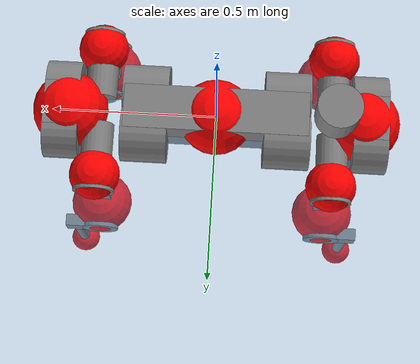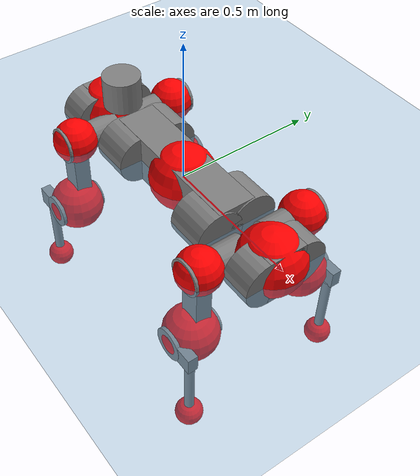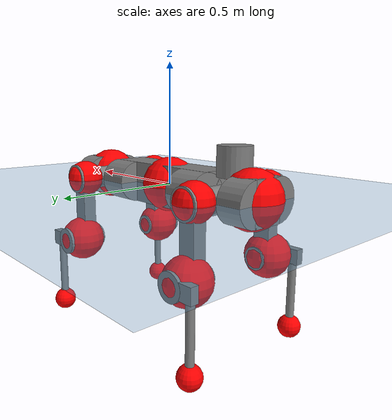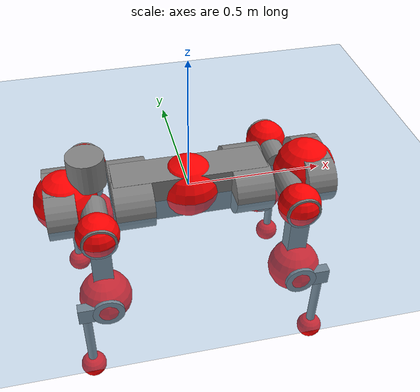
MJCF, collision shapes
<mujoco model="anymal_c">
  <compiler angle="radian" assetdir="assets" balanceinertia="true" inertiafromgeom="false"/>

  <option timestep="0.005" density="1.2" viscosity="2e-05"/>

  <size nkey="1"/>

  <visual>
    <quality shadowsize="8192"/>
    <map shadowclip="0.5"/>
  </visual>

  <default>
    <default class="/">
      <material specular="0" shininess="0.25"/>
      <geom contype="0" conaffinity="0" group="1" solref="-1000 -80"/>
      <site size="0.01 0.005 0.005" group="5"/>
      <general forcelimited="true" forcerange="-80 80" biastype="affine" gainprm="80" biasprm="0 -80 -2"/>
      <default class="anymal_c">
        <joint armature="0.01" damping="0.01" frictionloss="0.1"/>
        <default class="visual">
          <geom type="mesh" group="2"/>
          <default class="visual_zflip"/>
        </default>
        <default class="collision">
          <geom type="cylinder" group="3"/>
          <default class="foot">
            <geom size="0.03 0 0" type="sphere" condim="6" priority="1" friction="0.8 0.02 0.01" solimp="0.015 1 0.03"/>
          </default>
        </default>
      </default>
      <default class="reward_collision_sphere">
        <geom group="5" rgba="1 0 0 1"/>
      </default>
    </default>
  </default>

  <asset>
    <texture type="skybox" colorspace="auto" name="//unnamed_texture_0" builtin="gradient" rgb1="0.95 0.95 0.95" rgb2="0.95 0.95 0.95" width="100" height="600"/>
    <texture type="2d" colorspace="auto" name="texplane" builtin="checker" rgb1="0.345 0.575 0.748" rgb2="0.345 0.575 0.748" markrgb="1 1 1" width="512" height="512"/>
    <texture type="2d" colorspace="linear" name="base" file="base.png"/>
    <texture type="2d" colorspace="linear" name="top_shell" file="top_shell.png"/>
    <texture type="2d" colorspace="linear" name="bottom_shell" file="bottom_shell.png"/>
    <texture type="2d" colorspace="linear" name="remote" file="remote.png"/>
    <texture type="2d" colorspace="linear" name="hatch" file="hatch.png"/>
    <texture type="2d" colorspace="linear" name="handle" file="handle.png"/>
    <texture type="2d" colorspace="linear" name="face" file="face.png"/>
    <texture type="2d" colorspace="linear" name="battery" file="battery.png"/>
    <texture type="2d" colorspace="linear" name="lidar_cage" file="lidar_cage.png"/>
    <texture type="2d" colorspace="linear" name="depth_camera" file="depth_camera.png"/>
    <texture type="2d" colorspace="linear" name="wide_angle_camera" file="wide_angle_camera.png"/>
    <texture type="2d" colorspace="linear" name="lidar" file="lidar.png"/>
    <texture type="2d" colorspace="linear" name="drive" file="drive.png"/>
    <texture type="2d" colorspace="linear" name="hip_l" file="hip_l.png"/>
    <texture type="2d" colorspace="linear" name="shank_l" file="shank_l.png"/>
    <texture type="2d" colorspace="linear" name="foot" file="foot.png"/>
    <texture type="2d" colorspace="linear" name="thigh" file="thigh.png"/>
    <texture type="2d" colorspace="linear" name="shank_r" file="shank_r.png"/>
    <texture type="2d" colorspace="linear" name="hip_r" file="hip_r.png"/>
    <material name="MatPlane" class="/" texture="texplane" texuniform="true" texrepeat="2 2" specular="0.9" shininess="0.5"/>
    <material name="black_plastic" class="/" rgba="0.007 0.007 0.007 1"/>
    <material name="green" class="/" rgba="0.052 0.178 0.033 1"/>
    <material name="red" class="/" rgba="0.178 0.006 0.005 1"/>
    <material name="yellow" class="/" rgba="0.178 0.119 0.006 1"/>
    <material name="lwl" class="/" rgba="0.8 0.8 0.8 1"/>
    <material name="base" class="/" texture="base"/>
    <material name="top_shell" class="/" texture="top_shell"/>
    <material name="bottom_shell" class="/" texture="bottom_shell"/>
    <material name="hip_l" class="/" texture="hip_l"/>
    <material name="thigh" class="/" texture="thigh"/>
    <material name="shank_l" class="/" texture="shank_l"/>
    <material name="foot" class="/" texture="foot"/>
    <material name="hip_r" class="/" texture="hip_r"/>
    <material name="shank" class="/" texture="shank_r"/>
    <material name="hatch" class="/" texture="hatch"/>
    <material name="remote" class="/" texture="remote"/>
    <material name="handle" class="/" texture="handle"/>
    <material name="face" class="/" texture="face"/>
    <material name="depth_camera" class="/" texture="depth_camera"/>
    <material name="wide_angle_camera" class="/" texture="wide_angle_camera"/>
    <material name="battery" class="/" texture="battery"/>
    <material name="lidar_cage" class="/" texture="lidar_cage"/>
    <material name="lidar" class="/" texture="lidar"/>
    <material name="drive" class="/" texture="drive"/>
    <mesh name="base_0" class="/" file="base_0.obj"/>
    <mesh name="base_1" class="/" file="base_1.obj"/>
    <mesh name="base_2" class="/" file="base_2.obj"/>
    <mesh name="base_3" class="/" file="base_3.obj"/>
    <mesh name="base_4" class="/" file="base_4.obj"/>
    <mesh name="base_5" class="/" file="base_5.obj"/>
    <mesh name="top_shell" class="/" file="top_shell.obj"/>
    <mesh name="bottom_shell" class="/" file="bottom_shell.obj"/>
    <mesh name="remote" class="/" file="remote.obj"/>
    <mesh name="handle" class="/" file="handle.obj"/>
    <mesh name="face" class="/" file="face.obj"/>
    <mesh name="wide_angle_camera" class="/" file="wide_angle_camera.obj"/>
    <mesh name="depth_camera" class="/" file="depth_camera.obj"/>
    <mesh name="battery" class="/" file="battery.obj"/>
    <mesh name="lidar_cage" class="/" file="lidar_cage.obj"/>
    <mesh name="lidar" class="/" file="lidar.obj"/>
    <mesh name="drive" class="/" file="drive.obj"/>
    <mesh name="hip_l" class="/" file="hip_l.obj"/>
    <mesh name="thigh" class="/" file="thigh.obj"/>
    <mesh name="shank_l" class="/" file="shank_l.obj"/>
    <mesh name="foot" class="/" file="foot.obj"/>
    <mesh name="hip_r" class="/" file="hip_r.obj"/>
    <mesh name="hatch" class="/" file="hatch.obj"/>
    <mesh name="shank_r" class="/" file="shank_r.obj"/>
  </asset>

  <worldbody>
    <geom name="floor" class="/" size="100 100 0.125" type="plane" group="0" material="MatPlane"/>
    <light name="toplight_shadow" class="/" pos="0 0 5" dir="0.0990148 0.0990148 -0.990148" type="directional" ambient="0.04 0.04 0.04" diffuse="0.55 0.55 0.55" specular="0.12 0.12 0.12"/>
    <light name="toplight_fill" class="/" pos="0 0 5" dir="0.0990148 0.0990148 -0.990148" type="directional" castshadow="false" ambient="0.04 0.04 0.04" diffuse="0.3 0.3 0.3" specular="0.08 0.08 0.08"/>
    <body name="trunk" childclass="anymal_c" pos="-4.15325e-05 3.50039e-05 3.27736e-05" quat="1 -9.68064e-05 -2.11236e-05 0.000108998">
      <inertial pos="0.00236716 0.00147994 0.0478037" quat="0.499978 0.500264 0.499836 0.499922" mass="17.2574" diaginertia="0.619642 0.413016 0.194549"/>
      <joint name="//unnamed_joint_0" type="free" armature="0" damping="0" frictionloss="0"/>
      <geom name="//unnamed_geom_1" class="visual" material="green" mesh="base_0"/>
      <geom name="//unnamed_geom_2" class="visual" material="yellow" mesh="base_1"/>
      <geom name="//unnamed_geom_3" class="visual" material="red" mesh="base_2"/>
      <geom name="//unnamed_geom_4" class="visual" material="black_plastic" mesh="base_3"/>
      <geom name="//unnamed_geom_5" class="visual" material="lwl" mesh="base_4"/>
      <geom name="//unnamed_geom_6" class="visual" material="base" mesh="base_5"/>
      <geom name="trunk_1" class="collision" size="0.27883 0.0673037 0.0865334" type="box"/>
      <geom name="trunk_2" class="collision" size="0.0865334 0.0697074" pos="0.215233 0.0643064 0" quat="0.707107 0 0.707107 0"/>
      <geom name="trunk_3" class="collision" size="0.0865334 0.0697074" pos="-0.215233 0.0643064 0" quat="0.707107 0 0.707107 0"/>
      <geom name="trunk_4" class="collision" size="0.0865334 0.0697074" pos="0.215233 -0.0643064 0" quat="0.707107 0 0.707107 0"/>
      <geom name="trunk_5" class="collision" size="0.0865334 0.0697074" pos="-0.215233 -0.0643064 0" quat="0.707107 0 0.707107 0"/>
      <geom name="//unnamed_geom_12" class="visual" material="top_shell" mesh="top_shell"/>
      <geom name="//unnamed_geom_13" class="visual" material="bottom_shell" mesh="bottom_shell"/>
      <geom name="//unnamed_geom_14" class="visual" material="remote" mesh="remote"/>
      <geom name="//unnamed_geom_15" class="visual" material="handle" mesh="handle"/>
      <geom name="//unnamed_geom_16" class="visual" pos="0.410179 0 0" quat="1 0 0 0" material="face" mesh="face"/>
      <geom name="trunk_6" class="collision" size="0.0528815 0.0673037 0.0865334" pos="0.464606 0 0" type="box"/>
      <geom name="//unnamed_geom_18" class="collision" size="0.0865334 0.0528815" pos="0.464606 0.0643064 0" quat="0.707107 0 0.707107 0"/>
      <geom name="//unnamed_geom_19" class="collision" size="0.0865334 0.0528815" pos="0.464606 -0.0643064 0" quat="0.707107 0 0.707107 0"/>
      <geom name="//unnamed_geom_20" class="visual" pos="0.456837 0 -0.0284036" quat="0.965926 0 0.258819 0" material="depth_camera" mesh="depth_camera"/>
      <geom name="//unnamed_geom_21" class="visual" pos="0.507652 0 0.0146138" material="wide_angle_camera" mesh="wide_angle_camera"/>
      <geom name="//unnamed_geom_22" class="visual_zflip" pos="-0.410179 0 0" quat="0 0 0 1" material="face" mesh="face"/>
      <geom name="trunk_7" class="collision" size="0.0528815 0.0673037 0.0865334" pos="-0.464606 0 0" quat="0 0 0 1" type="box"/>
      <geom name="//unnamed_geom_24" class="collision" size="0.0865334 0.0528815" pos="-0.464606 -0.0643064 0" quat="0 -0.707107 0 0.707107"/>
      <geom name="//unnamed_geom_25" class="collision" size="0.0865334 0.0528815" pos="-0.464606 0.0643064 0" quat="0 -0.707107 0 0.707107"/>
      <geom name="//unnamed_geom_26" class="visual" pos="-0.456837 0 -0.0284036" quat="0 -0.258819 0 0.965926" material="depth_camera" mesh="depth_camera"/>
      <geom name="//unnamed_geom_27" class="visual_zflip" pos="-0.507652 0 0.0146138" quat="0 0 0 1" material="wide_angle_camera" mesh="wide_angle_camera"/>
      <geom name="//unnamed_geom_28" class="visual" material="battery" mesh="battery"/>
      <geom name="//unnamed_geom_29" class="visual" pos="0 0.0693099 0.0284604" quat="0.683013 -0.183013 0.183013 0.683013" material="depth_camera" mesh="depth_camera"/>
      <geom name="//unnamed_geom_30" class="visual" pos="0 -0.0693099 0.0284604" quat="0.683013 0.183013 0.183013 -0.683013" material="depth_camera" mesh="depth_camera"/>
      <geom name="//unnamed_geom_31" class="visual" pos="-0.360206 0 0.0717512" quat="1 0 0 0" material="lidar_cage" mesh="lidar_cage"/>
      <geom name="trunk_8" class="collision" size="0.0673037 0.0576889" pos="-0.360206 0 0.130324"/>
      <geom name="//unnamed_geom_33" class="visual" pos="-0.360206 -2.78598e-05 0.138817" quat="0.707107 0 0 -0.707107" material="lidar" mesh="lidar"/>
      <geom name="//unnamed_geom_34" class="visual" pos="0.296774 0.0955614 -9.92634e-10" quat="0.258819 0.965926 0 0" material="drive" mesh="drive"/>
      <geom name="//unnamed_geom_35" class="visual" pos="0.296774 -0.0955614 9.92634e-10" quat="0.258819 -0.965926 0 0" material="drive" mesh="drive"/>
      <geom name="//unnamed_geom_36" class="visual" pos="-0.296774 0.0955614 9.92634e-10" quat="0 0 0.965926 -0.258819" material="drive" mesh="drive"/>
      <geom name="//unnamed_geom_37" class="visual" pos="-0.296774 -0.0955614 -9.92634e-10" quat="0 0 -0.965926 -0.258819" material="drive" mesh="drive"/>
      <geom name="//unnamed_geom_38" class="visual" pos="0.114791 0 0.0712631" quat="1 0 0 0" material="hatch" mesh="hatch"/>
      <geom name="//unnamed_geom_39" class="reward_collision_sphere" size="0.115378"/>
      <geom name="//unnamed_geom_40" class="reward_collision_sphere" size="0.115378" pos="0.445309 0 0"/>
      <geom name="//unnamed_geom_41" class="reward_collision_sphere" size="0.115378" pos="-0.445309 0 0"/>
      <site name="imu" pos="0.242055 0.0117171 0.0405665" size="0.00961482"/>
      <camera name="track" pos="0 -1.83733 0" quat="0.707107 0.707107 0 0" mode="trackcom"/>
      <camera name="ego_camera" pos="0.445309 0 -0.0390483" quat="-0.5 -0.5 0.5 0.5"/>
      <body name="LF_HIP" pos="0.297484 0.0961921 0.00103409" quat="0.258516 0.966007 -6.89366e-05 7.68413e-06">
        <inertial pos="0.0551801 -0.0134466 -0.00704091" quat="-0.126361 0.709196 -0.136997 0.679931" mass="2.49977" diaginertia="0.0055919 0.00327559 0.00291072"/>
        <joint name="LF_HAA" pos="0 0 0" axis="0.999996 -0.000338533 0.00268061" range="-0.699369 0.48634" armature="0.00934576" damping="0.00561248" frictionloss="0.0923888"/>
        <geom name="//unnamed_geom_42" class="visual" pos="0 -5.83922e-05 9.59086e-06" quat="0.258819 -0.965926 0 0" material="hip_l" mesh="hip_l"/>
        <geom name="//unnamed_geom_43" class="visual" pos="0.0592756 -0.0709118 -0.0413665" quat="0.183013 -0.683013 0.683013 0.183013" material="drive" mesh="drive"/>
        <geom name="//unnamed_geom_44" class="collision" size="0.0480741 0.0673037" pos="0.0592756 -0.010987 -0.00674071" quat="-0.353553 -0.612372 0.612372 -0.353553"/>
        <body name="LF_THIGH" pos="0.0595849 -0.0664874 -0.0416356" quat="0.183109 -0.68302 0.682976 0.183027">
          <inertial pos="0.0310013 -9.04766e-05 -0.238957" quat="0.993187 -0.00459379 -0.0809893 0.0836657" mass="2.68065" diaginertia="0.0288164 0.0193679 0.00356889"/>
          <joint name="LF_HFE" pos="0 0 0" axis="0.999998 -0.000964937 -0.00196811" stiffness="0.00575039" range="-3.13893 3.11815" armature="0.00958013" damping="0.00773872" frictionloss="0.0984637"/>
          <geom name="//unnamed_geom_45" class="visual" pos="0.00141089 2.22323e-06 0" quat="0.707107 0 0 -0.707107" material="thigh" mesh="thigh"/>
          <geom name="//unnamed_geom_46" class="collision" size="0.0624963 0.0384593" pos="0.039583 0 0" quat="0.5 0.5 -0.5 -0.5"/>
          <geom name="//unnamed_geom_47" class="collision" size="0.0360556 0.0288445 0.135871" pos="0.0296873 0 -0.137952" quat="0.707107 0 0 -0.707107" type="box"/>
          <geom name="//unnamed_geom_48" class="visual" pos="0.0992545 0 -0.278219" quat="1 0 0 0" material="drive" mesh="drive"/>
          <geom name="//unnamed_geom_49" class="collision" size="0.0480741 0.0673037" pos="0.0299841 0 -0.278219" quat="0.707107 0 0.707107 0"/>
          <geom name="//unnamed_geom_50" class="reward_collision_sphere" size="0.0769185" pos="0.0247394 0 0"/>
          <body name="LF_SHANK" pos="0.0998056 -0.000710558 -0.278512" quat="1 0.000673029 -0.000316197 0.000281835">
            <inertial pos="0.00522095 -0.0561944 -0.0788454" quat="0.99293 -0.115931 -0.0010454 -0.025481" mass="0.527654" diaginertia="0.00965966 0.00595665 0.000992493"/>
            <joint name="LF_KFE" pos="0 0 0" axis="0.999996 -0.000339296 0.00292006" range="-3.12966 3.13254" armature="0.00999117" damping="0.0122264" frictionloss="0.0962111"/>
            <geom name="//unnamed_geom_51" class="visual" pos="0.00046006 0.00245306 0" quat="0.707107 0 0 -0.707107" material="shank_l" mesh="shank_l"/>
            <geom name="LF_kfe_act" class="collision" size="0.0576889 0.0192296" pos="0.0197915 0 0" quat="0.5 0.5 -0.5 -0.5"/>
            <geom name="//unnamed_geom_53" class="collision" size="0.0552842 0.03245 0.0182682" pos="0.0197915 -0.0528222 0" quat="0.5 0.5 -0.5 -0.5" type="box"/>
            <geom name="//unnamed_geom_54" class="visual" pos="0.0129139 -0.0800059 -0.329928" quat="0.382683 0 0 -0.92388" material="foot" mesh="foot"/>
            <geom name="LF_calf" class="collision" size="0.0168259 0.135811" pos="0.012914 -0.0807964 -0.164964" quat="0.707107 0 0 -0.707107"/>
            <geom name="LF_foot" class="foot" size="0.0305966" pos="0.012914 -0.0807964 -0.307964" quat="0.707107 0 0 -0.707107"/>
            <geom name="//unnamed_geom_57" class="reward_collision_sphere" size="0.0961482" pos="-0.0494788 0 0"/>
            <geom name="//unnamed_geom_58" class="reward_collision_sphere" size="0.0480741" pos="0.012914 -0.0807964 -0.307964"/>
            <site name="LF_foot" class="foot" pos="0.012914 -0.0807964 -0.307964" quat="0.707107 0 0 -0.707107" size="0.00961482"/>
          </body>
        </body>
      </body>
      <body name="RF_HIP" pos="0.296406 -0.0956156 -0.000144451" quat="0.258862 -0.965914 0.000138872 9.4983e-05">
        <inertial pos="0.0559873 0.01484 -0.00852048" quat="0.134612 0.679394 0.127564 0.709951" mass="2.41463" diaginertia="0.00545962 0.00320702 0.00291801"/>
        <joint name="RF_HAA" pos="0 0 0" axis="0.999998 -2.16976e-05 -0.00212645" range="-0.486328 0.694285" armature="0.0097257" damping="0.00718111" frictionloss="0.0982387"/>
        <geom name="//unnamed_geom_59" class="visual" pos="0 5.83917e-05 9.59084e-06" quat="0.258819 0.965926 0 0" material="hip_r" mesh="hip_r"/>
        <geom name="//unnamed_geom_60" class="visual" pos="0.0592756 0.0709118 -0.0413665" quat="0.183013 0.683013 0.683013 -0.183013" material="drive" mesh="drive"/>
        <geom name="//unnamed_geom_61" class="collision" size="0.0480741 0.0673037" pos="0.0592756 0.010987 -0.00674071" quat="-0.353553 0.612372 0.612372 0.353553"/>
        <body name="RF_THIGH" pos="0.0615419 0.0661576 -0.0421292" quat="0.183292 0.682904 0.683154 -0.182611">
          <inertial pos="0.0302347 -0.000560137 -0.239672" quat="0.99282 -0.00574296 -0.0809935 0.0878365" mass="2.82993" diaginertia="0.0288896 0.0202943 0.00381148"/>
          <joint name="RF_HFE" pos="0 0 0" axis="0.999968 -0.00578209 0.00546724" stiffness="0.0056835" range="-3.1021 3.11075" armature="0.00946592" damping="0.0045788" frictionloss="0.0966537"/>
          <geom name="//unnamed_geom_62" class="visual" pos="0.00141089 2.22323e-06 0" quat="0.707107 0 0 -0.707107" material="thigh" mesh="thigh"/>
          <geom name="//unnamed_geom_63" class="collision" size="0.0624963 0.0384593" pos="0.039583 0 0" quat="0.5 0.5 0.5 0.5"/>
          <geom name="//unnamed_geom_64" class="collision" size="0.0360556 0.0288445 0.135871" pos="0.0296873 0 -0.137952" quat="0.707107 0 0 0.707107" type="box"/>
          <geom name="//unnamed_geom_65" class="visual" pos="0.0992545 0 -0.278219" quat="1 0 0 0" material="drive" mesh="drive"/>
          <geom name="//unnamed_geom_66" class="collision" size="0.0480741 0.0673037" pos="0.0299841 0 -0.278219" quat="0.707107 0 0.707107 0"/>
          <geom name="//unnamed_geom_67" class="reward_collision_sphere" size="0.0769185" pos="0.0247394 0 0"/>
          <body name="RF_SHANK" pos="0.100568 -0.000131877 -0.278927" quat="1 -3.14157e-05 -0.000146064 -9.55901e-05">
            <inertial pos="0.00651818 0.056382 -0.076671" quat="0.993182 0.113672 0.000393617 0.0258557" mass="0.510543" diaginertia="0.00959201 0.00608635 0.000999173"/>
            <joint name="RF_KFE" pos="0 0 0" axis="0.999928 -0.00641429 0.0101688" range="-3.14821 3.12073" armature="0.00959996" damping="0.0108032" frictionloss="0.0863368"/>
            <geom name="//unnamed_geom_68" class="visual" pos="0.000460057 -0.00245306 0" quat="0.707107 0 0 0.707107" material="shank" mesh="shank_r"/>
            <geom name="RF_kfe_act" class="collision" size="0.0576889 0.0192296" pos="0.0197915 0 0" quat="0.5 0.5 0.5 0.5"/>
            <geom name="//unnamed_geom_70" class="collision" size="0.0552842 0.03245 0.0182682" pos="0.0197915 0.0528222 0" quat="0.5 0.5 0.5 0.5" type="box"/>
            <geom name="//unnamed_geom_71" class="visual" pos="0.0129141 0.0800059 -0.329928" quat="0.382683 0 0 0.92388" material="foot" mesh="foot"/>
            <geom name="RF_calf" class="collision" size="0.0168259 0.135811" pos="0.012914 0.0807964 -0.164964" quat="0.707107 0 0 0.707107"/>
            <geom name="RF_foot" class="foot" size="0.0298717" pos="0.012914 0.0807964 -0.307964" quat="0.707107 0 0 0.707107"/>
            <geom name="//unnamed_geom_74" class="reward_collision_sphere" size="0.0961482" pos="-0.0494788 0 0"/>
            <geom name="//unnamed_geom_75" class="reward_collision_sphere" size="0.0480741" pos="0.012914 0.0807964 -0.307964"/>
            <site name="RF_foot" class="foot" pos="0.012914 0.0807964 -0.307964" quat="0.707107 0 0 0.707107" size="0.00961482"/>
          </body>
        </body>
      </body>
      <body name="LH_HIP" pos="-0.296504 0.0962967 0.000337001" quat="7.68579e-06 -2.34754e-05 0.965925 -0.258824">
        <inertial pos="0.0571627 0.0128909 -0.00773709" quat="0.125011 0.681217 0.124984 0.710418" mass="2.40429" diaginertia="0.00549969 0.00320241 0.00295138"/>
        <joint name="LH_HAA" pos="0 0 0" axis="0.999999 0.00161817 0.000178205" range="-0.493969 0.742278" armature="0.00954215" damping="0.0108831" frictionloss="0.0918667"/>
        <geom name="//unnamed_geom_76" class="visual" pos="0 5.83917e-05 9.59084e-06" quat="-0.258819 -0.965926 0 0" material="hip_r" mesh="hip_r"/>
        <geom name="//unnamed_geom_77" class="visual" pos="0.0592756 0.0709118 -0.0413665" quat="0.183013 0.683013 0.683013 -0.183013" material="drive" mesh="drive"/>
        <geom name="//unnamed_geom_78" class="collision" size="0.0480741 0.0673037" pos="0.0592756 0.010987 -0.00674071" quat="-0.353553 0.612372 0.612372 0.353553"/>
        <body name="LH_THIGH" pos="0.058799 0.0661154 -0.0413229" quat="0.183001 0.683024 0.682949 -0.183217">
          <inertial pos="0.0313377 -4.33148e-05 -0.239635" quat="0.992625 -0.000846576 -0.0803413 0.0907808" mass="2.75817" diaginertia="0.0291181 0.0201149 0.0037327"/>
          <joint name="LH_HFE" pos="0 0 0" axis="0.999998 -0.00167015 -0.000513347" range="-3.13938 3.14408" armature="0.00958799" damping="0.00646209" frictionloss="0.096008"/>
          <geom name="//unnamed_geom_79" class="visual" pos="0.00141089 2.22323e-06 0" quat="0.707107 0 0 -0.707107" material="thigh" mesh="thigh"/>
          <geom name="//unnamed_geom_80" class="collision" size="0.0624963 0.0384593" pos="0.039583 0 0" quat="0.5 0.5 -0.5 -0.5"/>
          <geom name="//unnamed_geom_81" class="collision" size="0.0360556 0.0288445 0.135871" pos="0.0296873 0 -0.137952" quat="0.707107 0 0 -0.707107" type="box"/>
          <geom name="//unnamed_geom_82" class="visual" pos="0.0992545 0 -0.278219" quat="1 0 0 0" material="drive" mesh="drive"/>
          <geom name="//unnamed_geom_83" class="collision" size="0.0480741 0.0673037" pos="0.0299841 0 -0.278219" quat="0.707107 0 0.707107 0"/>
          <geom name="//unnamed_geom_84" class="reward_collision_sphere" size="0.0769185" pos="0.0247394 0 0"/>
          <body name="LH_SHANK" pos="0.0998659 -0.00066808 -0.278743" quat="1 7.84724e-06 2.03452e-06 0.000155648">
            <inertial pos="0.00578743 0.0570252 -0.0784967" quat="0.992935 0.115841 -0.00103318 0.0256806" mass="0.529542" diaginertia="0.00999041 0.0063133 0.00104682"/>
            <joint name="LH_KFE" pos="0 0 0" axis="0.999991 -2.76629e-05 -0.0043184" range="-3.14115 3.09649" armature="0.00951155" damping="0.0102206" frictionloss="0.0915274"/>
            <geom name="//unnamed_geom_85" class="visual" pos="0.000460057 -0.00245306 0" quat="-0.707107 0 0 -0.707107" material="shank" mesh="shank_r"/>
            <geom name="LH_kfe_act" class="collision" size="0.0576889 0.0192296" pos="0.0197915 0 0" quat="0.5 0.5 -0.5 -0.5"/>
            <geom name="//unnamed_geom_87" class="collision" size="0.0552842 0.03245 0.0182682" pos="0.0197915 0.0528222 0" quat="0.5 0.5 -0.5 -0.5" type="box"/>
            <geom name="//unnamed_geom_88" class="visual" pos="0.0129141 0.0800059 -0.329928" quat="-0.382683 0 0 -0.92388" material="foot" mesh="foot"/>
            <geom name="LH_calf" class="collision" size="0.0168259 0.135811" pos="0.012914 0.0807964 -0.164964" quat="0.707107 0 0 -0.707107"/>
            <geom name="LH_foot" class="foot" size="0.028331" pos="0.012914 0.0807964 -0.307964" quat="0.707107 0 0 -0.707107"/>
            <geom name="//unnamed_geom_91" class="reward_collision_sphere" size="0.0961482" pos="-0.0494788 0 0"/>
            <geom name="//unnamed_geom_92" class="reward_collision_sphere" size="0.0480741" pos="0.012914 0.0807964 -0.307964"/>
            <site name="LH_foot" class="foot" pos="0.012914 0.0807964 -0.307964" quat="0.707107 0 0 -0.707107" size="0.00961482"/>
          </body>
        </body>
      </body>
      <body name="RH_HIP" pos="-0.296769 -0.0952412 0.000447504" quat="0.00016638 -0.000193454 -0.966068 -0.258289">
        <inertial pos="0.0560815 -0.0151188 -0.007301" quat="-0.137752 0.709239 -0.137145 0.67764" mass="2.49519" diaginertia="0.00554618 0.00327056 0.0029332"/>
        <joint name="RH_HAA" pos="0 0 0" axis="0.999993 0.000369738 -0.0037802" stiffness="0.00221313" range="-0.743043 0.485236" armature="0.00904455" damping="0.00866165" frictionloss="0.0937647"/>
        <geom name="//unnamed_geom_93" class="visual" pos="0 -5.83922e-05 9.59086e-06" quat="-0.258819 0.965926 0 0" material="hip_l" mesh="hip_l"/>
        <geom name="//unnamed_geom_94" class="visual" pos="0.0592756 -0.0709118 -0.0413665" quat="-0.183013 0.683013 -0.683013 -0.183013" material="drive" mesh="drive"/>
        <geom name="//unnamed_geom_95" class="collision" size="0.0480741 0.0673037" pos="0.0592756 -0.010987 -0.00674071" quat="0.353553 0.612372 -0.612372 0.353553"/>
        <body name="RH_THIGH" pos="0.0587038 -0.0661262 -0.042844" quat="-0.182821 0.68296 -0.683164 -0.182834">
          <inertial pos="0.0307474 0.00202592 -0.240377" quat="0.9931 -0.00722276 -0.0815579 0.0839601" mass="2.65503" diaginertia="0.027949 0.0191272 0.00359297"/>
          <joint name="RH_HFE" pos="0 0 0" axis="0.999999 -0.000535895 -0.00147899" range="-3.16032 3.11607" armature="0.0106866" damping="0.00819983" frictionloss="0.0929613"/>
          <geom name="//unnamed_geom_96" class="visual" pos="0.00141089 2.22323e-06 0" quat="0.707107 0 0 -0.707107" material="thigh" mesh="thigh"/>
          <geom name="//unnamed_geom_97" class="collision" size="0.0624963 0.0384593" pos="0.039583 0 0" quat="0.5 0.5 0.5 0.5"/>
          <geom name="//unnamed_geom_98" class="collision" size="0.0360556 0.0288445 0.135871" pos="0.0296873 0 -0.137952" quat="0.707107 0 0 0.707107" type="box"/>
          <geom name="//unnamed_geom_99" class="visual" pos="0.0992545 0 -0.278219" quat="1 0 0 0" material="drive" mesh="drive"/>
          <geom name="//unnamed_geom_100" class="collision" size="0.0480741 0.0673037" pos="0.0299841 0 -0.278219" quat="0.707107 0 0.707107 0"/>
          <geom name="//unnamed_geom_101" class="reward_collision_sphere" size="0.0769185" pos="0.0247394 0 0"/>
          <body name="RH_SHANK" pos="0.0988857 0.000282423 -0.279084" quat="1 -0.000113502 -8.35762e-05 2.71857e-05">
            <inertial pos="0.00458538 -0.0561181 -0.0788714" quat="0.992713 -0.119046 -0.00456109 -0.0181177" mass="0.520394" diaginertia="0.00978663 0.00616309 0.0010302"/>
            <joint name="RH_KFE" pos="0 0 0" axis="1 -0.000615189 -4.52411e-05" stiffness="0.00128759" range="-3.11092 3.15793" armature="0.00964947" damping="0.00768303" frictionloss="0.0984941"/>
            <geom name="//unnamed_geom_102" class="visual" pos="0.00046006 0.00245306 0" quat="0.707107 0 0 -0.707107" material="shank_l" mesh="shank_l"/>
            <geom name="RH_kfe_act" class="collision" size="0.0576889 0.0192296" pos="0.0197915 0 0" quat="0.5 0.5 0.5 0.5"/>
            <geom name="//unnamed_geom_104" class="collision" size="0.0552842 0.03245 0.0182682" pos="0.0197915 -0.0528222 0" quat="0.5 0.5 0.5 0.5" type="box"/>
            <geom name="//unnamed_geom_105" class="visual" pos="0.0129139 -0.0800059 -0.329928" quat="0.382683 0 0 -0.92388" material="foot" mesh="foot"/>
            <geom name="RH_calf" class="collision" size="0.0168259 0.135811" pos="0.012914 -0.0807964 -0.164964" quat="0.707107 0 0 0.707107"/>
            <geom name="RH_foot" class="foot" size="0.0249191" pos="0.012914 -0.0807964 -0.307964" quat="0.707107 0 0 0.707107"/>
            <geom name="//unnamed_geom_108" class="reward_collision_sphere" size="0.0961482" pos="-0.0494788 0 0"/>
            <geom name="//unnamed_geom_109" class="reward_collision_sphere" size="0.0480741" pos="0.012914 -0.0807964 -0.307964"/>
            <site name="RH_foot" class="foot" pos="0.012914 -0.0807964 -0.307964" quat="0.707107 0 0 0.707107" size="0.00961482"/>
          </body>
        </body>
      </body>
    </body>
  </worldbody>

  <contact>
    <pair class="/" geom1="floor" geom2="LF_foot" name="//unnamed_contact_0"/>
    <pair class="/" geom1="floor" geom2="RF_foot" name="//unnamed_contact_1"/>
    <pair class="/" geom1="floor" geom2="LH_foot" name="//unnamed_contact_2"/>
    <pair class="/" geom1="floor" geom2="RH_foot" name="//unnamed_contact_3"/>
  </contact>

  <actuator>
    <general name="LF_HAA" class="/" joint="LF_HAA" forcerange="-80.1948 80.1948" gainprm="80.1525" biasprm="0 -80.1525 -1.89223"/>
    <general name="LF_HFE" class="/" joint="LF_HFE" forcerange="-71.256 71.256" gainprm="80.1525" biasprm="0 -80.1525 -1.89223"/>
    <general name="LF_KFE" class="/" joint="LF_KFE" forcerange="-76.4802 76.4802" gainprm="80.1525" biasprm="0 -80.1525 -1.89223"/>
    <general name="RF_HAA" class="/" joint="RF_HAA" forcerange="-78.6872 78.6872" gainprm="80.1525" biasprm="0 -80.1525 -1.89223"/>
    <general name="RF_HFE" class="/" joint="RF_HFE" forcerange="-75.2449 75.2449" gainprm="80.1525" biasprm="0 -80.1525 -1.89223"/>
    <general name="RF_KFE" class="/" joint="RF_KFE" forcerange="-79.9595 79.9595" gainprm="80.1525" biasprm="0 -80.1525 -1.89223"/>
    <general name="LH_HAA" class="/" joint="LH_HAA" forcerange="-76.6624 76.6624" gainprm="80.1525" biasprm="0 -80.1525 -1.89223"/>
    <general name="LH_HFE" class="/" joint="LH_HFE" forcerange="-77.3944 77.3944" gainprm="80.1525" biasprm="0 -80.1525 -1.89223"/>
    <general name="LH_KFE" class="/" joint="LH_KFE" forcerange="-80.53 80.53" gainprm="80.1525" biasprm="0 -80.1525 -1.89223"/>
    <general name="RH_HAA" class="/" joint="RH_HAA" forcerange="-71.8493 71.8493" gainprm="80.1525" biasprm="0 -80.1525 -1.89223"/>
    <general name="RH_HFE" class="/" joint="RH_HFE" forcerange="-76.1166 76.1166" gainprm="80.1525" biasprm="0 -80.1525 -1.89223"/>
    <general name="RH_KFE" class="/" joint="RH_KFE" forcerange="-76.9205 76.9205" gainprm="80.1525" biasprm="0 -80.1525 -1.89223"/>
  </actuator>

  <sensor>
    <gyro site="imu" name="imu_angular_velocity"/>
    <velocimeter site="imu" name="imu_linear_velocity"/>
    <framelinvel objtype="site" objname="LF_foot" name="LF_foot_global_linear_velocity"/>
    <framelinvel objtype="site" objname="RF_foot" name="RF_foot_global_linear_velocity"/>
    <framelinvel objtype="site" objname="LH_foot" name="LH_foot_global_linear_velocity"/>
    <framelinvel objtype="site" objname="RH_foot" name="RH_foot_global_linear_velocity"/>
  </sensor>

  <keyframe>
    <key name="home" qpos="0 0 0.55 1 0 0 0 0 0.4 -0.8 0 -0.4 0.8 0 -0.4 0.8 0 0.4 -0.8"/>
  </keyframe>
</mujoco>
